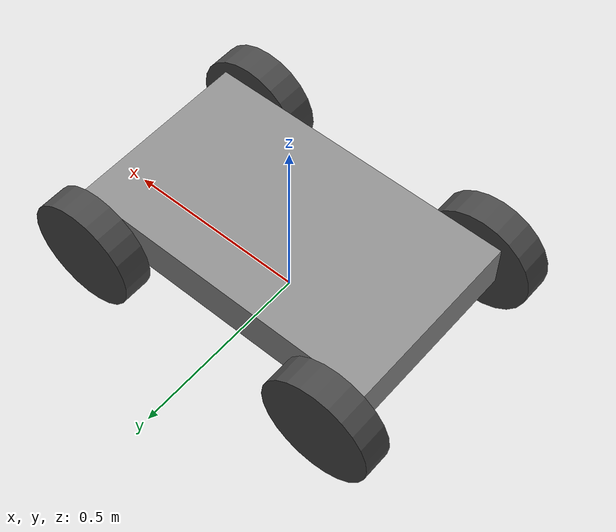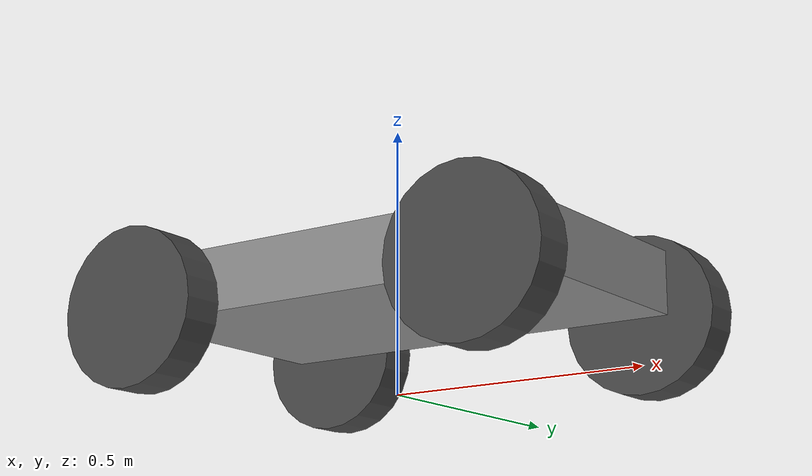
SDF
<?xml version='1.0' encoding='utf-8'?>
<sdf version="1.10">
  <model name="nomad_vehicle" canonical_link="base_link">
    <static>false</static>
    <self_collide>false</self_collide>
    <link name="base_link">
      <pose relative_to="__model__">0 0 0 0 0 0</pose>
      <inertial>
        <pose>0 0 0.2 0 0 0</pose>
        <mass>30.0</mass>
        <inertia>
          <ixx>0.661</ixx>
          <iyy>1.84225</iyy>
          <izz>2.43125</izz>
          <ixy>0</ixy>
          <ixz>0</ixz>
          <iyz>0</iyz>
        </inertia>
      </inertial>
      <visual name="base_link_visual">
        <pose>0 0 0.2 0 0 0</pose>
        <geometry>
          <box>
            <size>0.85 0.5 0.12</size>
          </box>
        </geometry>
        <material>
          <ambient>0.55 0.55 0.55 1</ambient>
          <diffuse>0.55 0.55 0.55 1</diffuse>
          <specular>0.05 0.05 0.05 1</specular>
        </material>
      </visual>
      <collision name="base_link_collision">
        <pose>0 0 0.2 0 0 0</pose>
        <geometry>
          <box>
            <size>0.85 0.5 0.12</size>
          </box>
        </geometry>
      </collision>
      <sensor name="oak_rgb" type="rgbd_camera">
        <pose relative_to="base_link">0.46 0 0.29 0 0 0</pose>
        <always_on>true</always_on>
        <update_rate>30</update_rate>
        <visualize>false</visualize>
        <topic>/nomad/raw/oak/rgbd</topic>
        <gz_frame_id>oak_rgb_optical_frame</gz_frame_id>
        <camera>
          <optical_frame_id>oak_rgb_optical_frame</optical_frame_id>
          <horizontal_fov>1.20427718387609</horizontal_fov>
          <image>
            <width>640</width>
            <height>480</height>
            <format>R8G8B8</format>
          </image>
          <clip>
            <near>0.05</near>
            <far>40</far>
          </clip>
          <depth_camera>
            <clip>
              <near>0.4</near>
              <far>8</far>
            </clip>
          </depth_camera>
          <lens>
            <type>gnomonical</type>
            <intrinsics>
              <fx>465.602889175182</fx>
              <fy>471.026521321236</fy>
              <cx>320</cx>
              <cy>240</cy>
              <s>0</s>
            </intrinsics>
            <projection>
              <p_fx>465.602889175182</p_fx>
              <p_fy>471.026521321236</p_fy>
              <p_cx>320</p_cx>
              <p_cy>240</p_cy>
              <tx>0</tx>
              <ty>0</ty>
            </projection>
          </lens>
        </camera>
      </sensor>
      <sensor name="oak_left" type="camera">
        <pose relative_to="base_link">0.46 0.0375 0.29 0 0 0</pose>
        <always_on>true</always_on>
        <update_rate>30</update_rate>
        <visualize>false</visualize>
        <topic>/nomad/raw/oak/left/image_raw</topic>
        <gz_frame_id>oak_left_optical_frame</gz_frame_id>
        <camera>
          <optical_frame_id>oak_left_optical_frame</optical_frame_id>
          <camera_info_topic>/nomad/raw/oak/left/camera_info</camera_info_topic>
          <horizontal_fov>1.27409035395586</horizontal_fov>
          <image>
            <width>640</width>
            <height>480</height>
            <format>L8</format>
          </image>
          <clip>
            <near>0.05</near>
            <far>40</far>
          </clip>
          <lens>
            <type>gnomonical</type>
            <intrinsics>
              <fx>432.455180142659</fx>
              <fy>432.971461265142</fy>
              <cx>320</cx>
              <cy>240</cy>
              <s>0</s>
            </intrinsics>
            <projection>
              <p_fx>432.455180142659</p_fx>
              <p_fy>432.971461265142</p_fy>
              <p_cx>320</p_cx>
              <p_cy>240</p_cy>
              <tx>0</tx>
              <ty>0</ty>
            </projection>
          </lens>
        </camera>
      </sensor>
      <sensor name="oak_right" type="camera">
        <pose relative_to="base_link">0.46 -0.0375 0.29 0 0 0</pose>
        <always_on>true</always_on>
        <update_rate>30</update_rate>
        <visualize>false</visualize>
        <topic>/nomad/raw/oak/right/image_raw</topic>
        <gz_frame_id>oak_right_optical_frame</gz_frame_id>
        <camera>
          <optical_frame_id>oak_right_optical_frame</optical_frame_id>
          <camera_info_topic>/nomad/raw/oak/right/camera_info</camera_info_topic>
          <horizontal_fov>1.27409035395586</horizontal_fov>
          <image>
            <width>640</width>
            <height>480</height>
            <format>L8</format>
          </image>
          <clip>
            <near>0.05</near>
            <far>40</far>
          </clip>
          <lens>
            <type>gnomonical</type>
            <intrinsics>
              <fx>432.455180142659</fx>
              <fy>432.971461265142</fy>
              <cx>320</cx>
              <cy>240</cy>
              <s>0</s>
            </intrinsics>
            <projection>
              <p_fx>432.455180142659</p_fx>
              <p_fy>432.971461265142</p_fy>
              <p_cx>320</p_cx>
              <p_cy>240</p_cy>
              <tx>-32.4341385106994</tx>
              <ty>0</ty>
            </projection>
          </lens>
        </camera>
      </sensor>
      <sensor name="ydlidar_g2" type="gpu_lidar">
        <pose relative_to="base_link">0.15 0 0.38 0 0 0</pose>
        <topic>/nomad/raw/scan</topic>
        <gz_frame_id>scan</gz_frame_id>
        <always_on>true</always_on>
        <update_rate>10</update_rate>
        <visualize>false</visualize>
        <lidar>
          <scan>
            <horizontal>
              <samples>500</samples>
              <resolution>1</resolution>
              <min_angle>-3.14159265358979</min_angle>
              <max_angle>3.12902628297543</max_angle>
            </horizontal>
            <vertical>
              <samples>1</samples>
              <resolution>1</resolution>
              <min_angle>0</min_angle>
              <max_angle>0</max_angle>
            </vertical>
          </scan>
          <range>
            <min>0.12</min>
            <max>12</max>
            <resolution>0.01</resolution>
          </range>
          <noise>
            <type>gaussian</type>
            <mean>0</mean>
            <stddev>0.01</stddev>
          </noise>
        </lidar>
      </sensor>
      <sensor name="oak_imu" type="imu">
        <pose relative_to="base_link">0.46 0 0.29 0 0 0</pose>
        <always_on>true</always_on>
        <update_rate>200</update_rate>
        <topic>/nomad/raw/oak/imu</topic>
        <gz_frame_id>oak_imu_frame</gz_frame_id>
        <imu />
      </sensor>
    </link>
    <link name="front_left_steering_link">
      <pose relative_to="__model__">0.36 0.3 0.15 0 0 0</pose>
      <inertial>
        <pose>0 0 0 0 0 0</pose>
        <mass>0.3</mass>
        <inertia>
          <ixx>8.6875e-05</ixx>
          <iyy>8.6875e-05</iyy>
          <izz>9.375e-05</izz>
          <ixy>0</ixy>
          <ixz>0</ixz>
          <iyz>0</iyz>
        </inertia>
      </inertial>
      <visual name="front_left_steering_link_visual">
        <pose>0 0 0 0 0 0</pose>
        <geometry>
          <cylinder>
            <radius>0.025</radius>
            <length>0.04</length>
          </cylinder>
        </geometry>
        <material>
          <ambient>0.55 0.55 0.55 1</ambient>
          <diffuse>0.55 0.55 0.55 1</diffuse>
          <specular>0.05 0.05 0.05 1</specular>
        </material>
      </visual>
    </link>
    <link name="front_left_wheel">
      <pose relative_to="__model__">0.36 0.3 0.15 0 0 0</pose>
      <inertial>
        <pose>0 0 0 0 0 0</pose>
        <mass>1</mass>
        <inertia>
          <ixx>0.00615833333333333</ixx>
          <iyy>0.01125</iyy>
          <izz>0.00615833333333333</izz>
          <ixy>0</ixy>
          <ixz>0</ixz>
          <iyz>0</iyz>
        </inertia>
      </inertial>
      <visual name="front_left_wheel_visual">
        <pose>0 0 0 1.5707963267949 0 0</pose>
        <geometry>
          <cylinder>
            <radius>0.15</radius>
            <length>0.08</length>
          </cylinder>
        </geometry>
        <material>
          <ambient>0.28 0.28 0.28 1</ambient>
          <diffuse>0.28 0.28 0.28 1</diffuse>
          <specular>0.05 0.05 0.05 1</specular>
        </material>
      </visual>
      <collision name="front_left_wheel_collision">
        <pose>0 0 0 1.5707963267949 0 0</pose>
        <geometry>
          <cylinder>
            <radius>0.15</radius>
            <length>0.08</length>
          </cylinder>
        </geometry>
        <surface>
          <friction>
            <ode>
              <mu>1</mu>
              <mu2>1</mu2>
            </ode>
          </friction>
        </surface>
      </collision>
    </link>
    <link name="front_right_steering_link">
      <pose relative_to="__model__">0.36 -0.3 0.15 0 0 0</pose>
      <inertial>
        <pose>0 0 0 0 0 0</pose>
        <mass>0.3</mass>
        <inertia>
          <ixx>8.6875e-05</ixx>
          <iyy>8.6875e-05</iyy>
          <izz>9.375e-05</izz>
          <ixy>0</ixy>
          <ixz>0</ixz>
          <iyz>0</iyz>
        </inertia>
      </inertial>
      <visual name="front_right_steering_link_visual">
        <pose>0 0 0 0 0 0</pose>
        <geometry>
          <cylinder>
            <radius>0.025</radius>
            <length>0.04</length>
          </cylinder>
        </geometry>
        <material>
          <ambient>0.55 0.55 0.55 1</ambient>
          <diffuse>0.55 0.55 0.55 1</diffuse>
          <specular>0.05 0.05 0.05 1</specular>
        </material>
      </visual>
    </link>
    <link name="front_right_wheel">
      <pose relative_to="__model__">0.36 -0.3 0.15 0 0 0</pose>
      <inertial>
        <pose>0 0 0 0 0 0</pose>
        <mass>1</mass>
        <inertia>
          <ixx>0.00615833333333333</ixx>
          <iyy>0.01125</iyy>
          <izz>0.00615833333333333</izz>
          <ixy>0</ixy>
          <ixz>0</ixz>
          <iyz>0</iyz>
        </inertia>
      </inertial>
      <visual name="front_right_wheel_visual">
        <pose>0 0 0 1.5707963267949 0 0</pose>
        <geometry>
          <cylinder>
            <radius>0.15</radius>
            <length>0.08</length>
          </cylinder>
        </geometry>
        <material>
          <ambient>0.28 0.28 0.28 1</ambient>
          <diffuse>0.28 0.28 0.28 1</diffuse>
          <specular>0.05 0.05 0.05 1</specular>
        </material>
      </visual>
      <collision name="front_right_wheel_collision">
        <pose>0 0 0 1.5707963267949 0 0</pose>
        <geometry>
          <cylinder>
            <radius>0.15</radius>
            <length>0.08</length>
          </cylinder>
        </geometry>
        <surface>
          <friction>
            <ode>
              <mu>1</mu>
              <mu2>1</mu2>
            </ode>
          </friction>
        </surface>
      </collision>
    </link>
    <link name="rear_left_wheel">
      <pose relative_to="__model__">-0.36 0.3 0.15 0 0 0</pose>
      <inertial>
        <pose>0 0 0 0 0 0</pose>
        <mass>1</mass>
        <inertia>
          <ixx>0.00615833333333333</ixx>
          <iyy>0.01125</iyy>
          <izz>0.00615833333333333</izz>
          <ixy>0</ixy>
          <ixz>0</ixz>
          <iyz>0</iyz>
        </inertia>
      </inertial>
      <visual name="rear_left_wheel_visual">
        <pose>0 0 0 1.5707963267949 0 0</pose>
        <geometry>
          <cylinder>
            <radius>0.15</radius>
            <length>0.08</length>
          </cylinder>
        </geometry>
        <material>
          <ambient>0.28 0.28 0.28 1</ambient>
          <diffuse>0.28 0.28 0.28 1</diffuse>
          <specular>0.05 0.05 0.05 1</specular>
        </material>
      </visual>
      <collision name="rear_left_wheel_collision">
        <pose>0 0 0 1.5707963267949 0 0</pose>
        <geometry>
          <cylinder>
            <radius>0.15</radius>
            <length>0.08</length>
          </cylinder>
        </geometry>
        <surface>
          <friction>
            <ode>
              <mu>1</mu>
              <mu2>1</mu2>
            </ode>
          </friction>
        </surface>
      </collision>
    </link>
    <link name="rear_right_wheel">
      <pose relative_to="__model__">-0.36 -0.3 0.15 0 0 0</pose>
      <inertial>
        <pose>0 0 0 0 0 0</pose>
        <mass>1</mass>
        <inertia>
          <ixx>0.00615833333333333</ixx>
          <iyy>0.01125</iyy>
          <izz>0.00615833333333333</izz>
          <ixy>0</ixy>
          <ixz>0</ixz>
          <iyz>0</iyz>
        </inertia>
      </inertial>
      <visual name="rear_right_wheel_visual">
        <pose>0 0 0 1.5707963267949 0 0</pose>
        <geometry>
          <cylinder>
            <radius>0.15</radius>
            <length>0.08</length>
          </cylinder>
        </geometry>
        <material>
          <ambient>0.28 0.28 0.28 1</ambient>
          <diffuse>0.28 0.28 0.28 1</diffuse>
          <specular>0.05 0.05 0.05 1</specular>
        </material>
      </visual>
      <collision name="rear_right_wheel_collision">
        <pose>0 0 0 1.5707963267949 0 0</pose>
        <geometry>
          <cylinder>
            <radius>0.15</radius>
            <length>0.08</length>
          </cylinder>
        </geometry>
        <surface>
          <friction>
            <ode>
              <mu>1</mu>
              <mu2>1</mu2>
            </ode>
          </friction>
        </surface>
      </collision>
    </link>
    <joint name="front_left_steering_joint" type="revolute">
      <parent>base_link</parent>
      <child>front_left_steering_link</child>
      <pose relative_to="front_left_steering_link">0 0 0 0 0 0</pose>
      <axis>
        <xyz>0 0 1</xyz>
        <limit>
          <lower>-0.55</lower>
          <upper>0.55</upper>
          <effort>12</effort>
          <velocity>2</velocity>
        </limit>
        <dynamics>
          <damping>0.02</damping>
        </dynamics>
      </axis>
    </joint>
    <joint name="front_left_wheel_joint" type="revolute">
      <parent>front_left_steering_link</parent>
      <child>front_left_wheel</child>
      <pose relative_to="front_left_wheel">0 0 0 0 0 0</pose>
      <axis>
        <xyz>0 1 0</xyz>
        <limit>
          <lower>-1e+16</lower>
          <upper>1e+16</upper>
          <effort>20</effort>
          <velocity>20</velocity>
        </limit>
        <dynamics>
          <damping>0.02</damping>
        </dynamics>
      </axis>
    </joint>
    <joint name="front_right_steering_joint" type="revolute">
      <parent>base_link</parent>
      <child>front_right_steering_link</child>
      <pose relative_to="front_right_steering_link">0 0 0 0 0 0</pose>
      <axis>
        <xyz>0 0 1</xyz>
        <limit>
          <lower>-0.55</lower>
          <upper>0.55</upper>
          <effort>12</effort>
          <velocity>2</velocity>
        </limit>
        <dynamics>
          <damping>0.02</damping>
        </dynamics>
      </axis>
    </joint>
    <joint name="front_right_wheel_joint" type="revolute">
      <parent>front_right_steering_link</parent>
      <child>front_right_wheel</child>
      <pose relative_to="front_right_wheel">0 0 0 0 0 0</pose>
      <axis>
        <xyz>0 1 0</xyz>
        <limit>
          <lower>-1e+16</lower>
          <upper>1e+16</upper>
          <effort>20</effort>
          <velocity>20</velocity>
        </limit>
        <dynamics>
          <damping>0.02</damping>
        </dynamics>
      </axis>
    </joint>
    <joint name="rear_left_wheel_joint" type="revolute">
      <parent>base_link</parent>
      <child>rear_left_wheel</child>
      <pose relative_to="rear_left_wheel">0 0 0 0 0 0</pose>
      <axis>
        <xyz>0 1 0</xyz>
        <limit>
          <lower>-1e+16</lower>
          <upper>1e+16</upper>
          <effort>20</effort>
          <velocity>20</velocity>
        </limit>
        <dynamics>
          <damping>0.02</damping>
        </dynamics>
      </axis>
    </joint>
    <joint name="rear_right_wheel_joint" type="revolute">
      <parent>base_link</parent>
      <child>rear_right_wheel</child>
      <pose relative_to="rear_right_wheel">0 0 0 0 0 0</pose>
      <axis>
        <xyz>0 1 0</xyz>
        <limit>
          <lower>-1e+16</lower>
          <upper>1e+16</upper>
          <effort>20</effort>
          <velocity>20</velocity>
        </limit>
        <dynamics>
          <damping>0.02</damping>
        </dynamics>
      </axis>
    </joint>
    <frame name="oak_rgb_optical_frame" attached_to="base_link">
      <pose relative_to="base_link">0.46 0 0.29 -1.5707963267949 0 -1.5707963267949</pose>
    </frame>
    <frame name="oak_depth_optical_frame" attached_to="base_link">
      <pose relative_to="base_link">0.46 0 0.29 -1.5707963267949 0 -1.5707963267949</pose>
    </frame>
    <frame name="oak_left_optical_frame" attached_to="base_link">
      <pose relative_to="base_link">0.46 0.0375 0.29 -1.5707963267949 0 -1.5707963267949</pose>
    </frame>
    <frame name="oak_right_optical_frame" attached_to="base_link">
      <pose relative_to="base_link">0.46 -0.0375 0.29 -1.5707963267949 0 -1.5707963267949</pose>
    </frame>
    <frame name="scan" attached_to="base_link">
      <pose relative_to="base_link">0.15 0 0.38 0 0 0</pose>
    </frame>
    <frame name="oak_imu_frame" attached_to="base_link">
      <pose relative_to="base_link">0.46 0 0.29 0 0 0</pose>
    </frame>
    <plugin filename="gz-sim-ackermann-steering-system" name="gz::sim::systems::AckermannSteering">
      <left_joint>rear_left_wheel_joint</left_joint>
      <right_joint>rear_right_wheel_joint</right_joint>
      <left_steering_joint>front_left_steering_joint</left_steering_joint>
      <right_steering_joint>front_right_steering_joint</right_steering_joint>
      <wheel_base>0.72</wheel_base>
      <wheel_separation>0.6</wheel_separation>
      <kingpin_width>0.6</kingpin_width>
      <wheel_radius>0.15</wheel_radius>
      <steering_limit>0.55</steering_limit>
      <min_velocity>-1</min_velocity>
      <max_velocity>1</max_velocity>
      <min_acceleration>-0.6</min_acceleration>
      <max_acceleration>0.6</max_acceleration>
      <topic>/nomad/vehicle/cmd_vel</topic>
      <odom_topic>/nomad/vehicle/wheel_odom</odom_topic>
      <tf_topic>/nomad/vehicle/wheel_tf</tf_topic>
      <frame_id>odom</frame_id>
      <child_frame_id>base_link</child_frame_id>
      <odom_publish_frequency>50</odom_publish_frequency>
    </plugin>
    <plugin filename="gz-sim-odometry-publisher-system" name="gz::sim::systems::OdometryPublisher">
      <dimensions>3</dimensions>
      <odom_frame>odom</odom_frame>
      <robot_base_frame>base_link</robot_base_frame>
      <odom_topic>/nomad/vehicle/odom</odom_topic>
      <tf_topic>/nomad/vehicle/tf</tf_topic>
      <odom_publish_frequency>50</odom_publish_frequency>
      <gaussian_noise>0</gaussian_noise>
    </plugin>
    <plugin filename="gz-sim-joint-state-publisher-system" name="gz::sim::systems::JointStatePublisher">
      <topic>/nomad/vehicle/joint_states</topic>
      <update_rate>50</update_rate>
      <joint_name>front_left_steering_joint</joint_name>
      <joint_name>front_left_wheel_joint</joint_name>
      <joint_name>front_right_steering_joint</joint_name>
      <joint_name>front_right_wheel_joint</joint_name>
      <joint_name>rear_left_wheel_joint</joint_name>
      <joint_name>rear_right_wheel_joint</joint_name>
    </plugin>
  </model>
</sdf>
